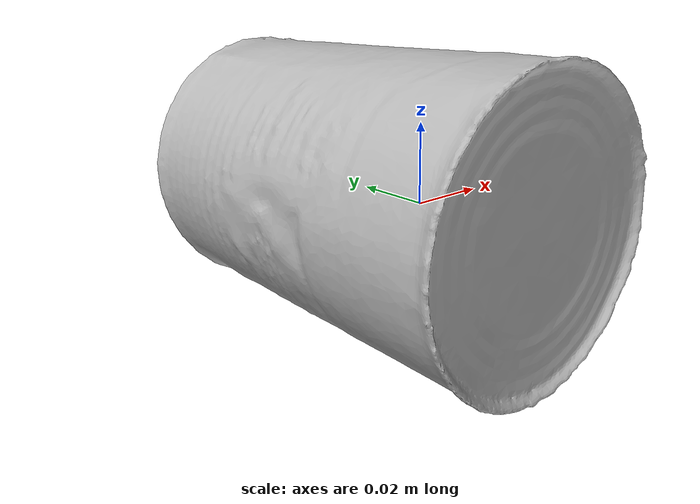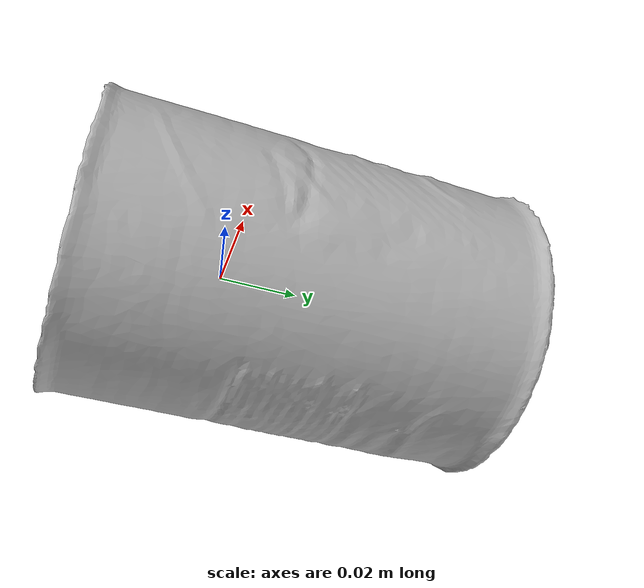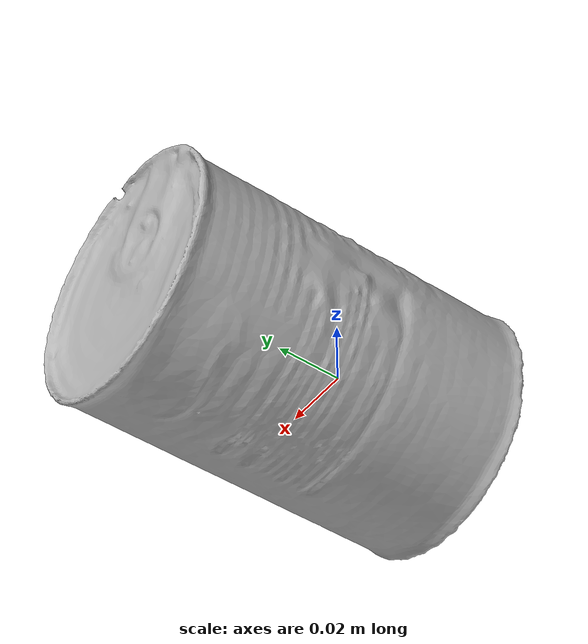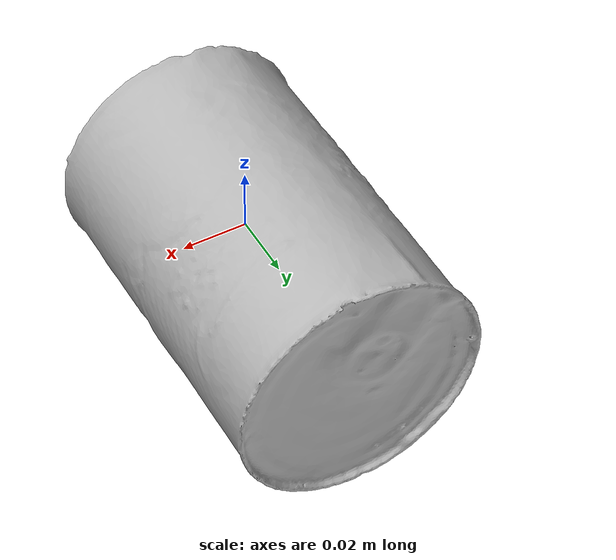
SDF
<?xml version='1.0'?>
<sdf version="1.4">
  <model name="ChoppedTomatoes">
    <static>false</static>
    <link name="link">
      <inertial>
        <pose>0.002058095766189483 0.016653624283623467 -0.00012475595121726573 -1.5671420083925933 0.9229995987957591 0.009335462586984538</pose>
        <mass>0.04835309160436354</mass>
        <inertia>
          <ixx>6.436210924109998e-05</ixx>
          <ixy>2.512230652893333e-20</ixy>
          <ixz>5.815113942631705e-21</ixz>
          <iyy>6.420456733548709e-05</iyy>
          <iyz>8.317281703058967e-21</iyz>
          <izz>3.439770668162257e-05</izz>
        </inertia>
      </inertial>
      <collision name="collision">
        <geometry>
          <mesh>
            <!-- Use a downsampled mesh for collisions -->
            <uri>model:///ChoppedTomatoes/ChoppedTomatoes_250_collision.obj</uri>
	        </mesh>
        </geometry>
        <surface>
      </surface>
      </collision>
      <visual name="visual">
        <geometry>
          <mesh>
            <uri>model:///ChoppedTomatoes/ChoppedTomatoes_25k_tex.obj</uri>
	        </mesh>
        </geometry>
        <material>
          <script>
            <uri>model:///ChoppedTomatoes/ChoppedTomatoes.material</uri>
            <name>ChoppedTomatoes</name>
          </script>
        </material>
      </visual>
    </link>
  </model>
</sdf>
